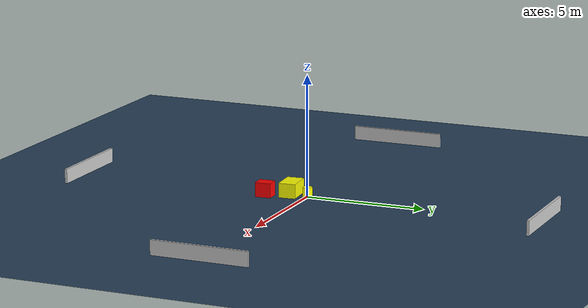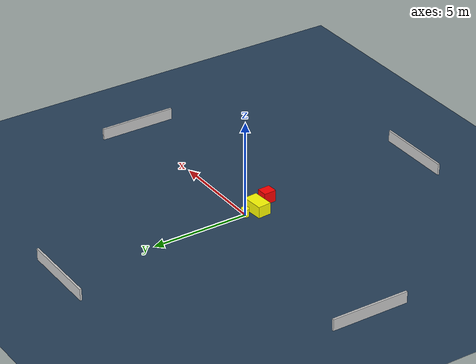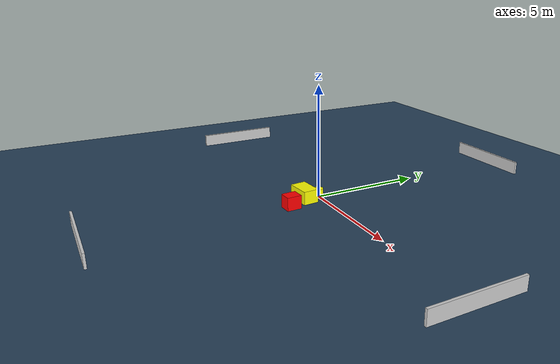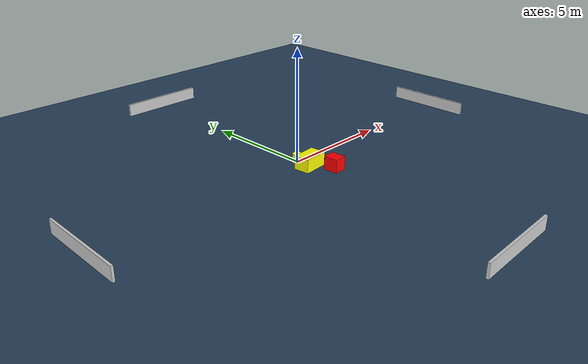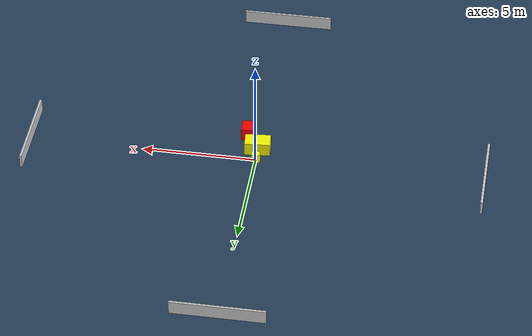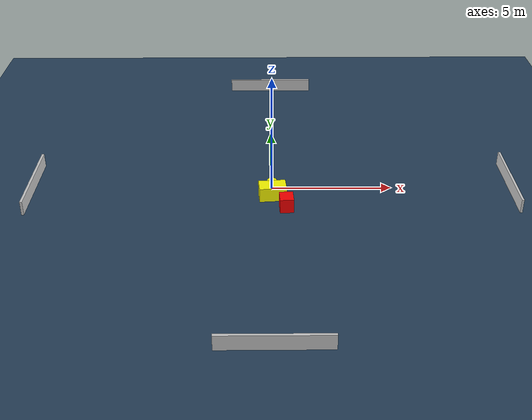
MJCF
<?xml version="1.0" ?>
<mujoco model="generated_environment">
  <option timestep="0.01" integrator="RK4" cone="elliptic"/>
  <default>
    <geom density="1"/>
  </default>
  <asset>
    <texture builtin="gradient" height="3072" name="skybox" rgb1="0.3 0.5 0.7" rgb2="0 0 0" type="skybox" width="512"/>
    <texture builtin="checker" height="300" name="groundplane" rgb1="0.2 0.3 0.4" rgb2="0.1 0.2 0.3" type="2d" width="300"/>
    <material name="groundplane" reflectance="0.2" texrepeat="5 5" texture="groundplane"/>
  </asset>
  <worldbody>
    <light dir="0 0 -1" directional="true" pos="0 0 1.5"/>
    <geom condim="3" friction="0.5 0.005 0.001" material="groundplane" name="floor" pos="0 0 0" size="0 0 0.05" type="plane"/>
    <body name="walls">
      <geom name="wall_1" condim="4" pos="-10.0 0.0 0.3" rgba="0.800000011920929 0.800000011920929 0.800000011920929 1.0" size="0.05 2.0 0.3" type="box"/>
      <geom name="wall_2" condim="4" pos="10.0 0.0 0.3" rgba="0.800000011920929 0.800000011920929 0.800000011920929 1.0" size="0.05 2.0 0.3" type="box"/>
      <geom name="wall_3" condim="4" pos="0.0 -10.0 0.3" rgba="0.800000011920929 0.800000011920929 0.800000011920929 1.0" size="2.0 0.05 0.3" type="box"/>
      <geom name="wall_4" condim="4" pos="0.0 10.0 0.3" rgba="0.800000011920929 0.800000011920929 0.800000011920929 1.0" size="2.0 0.05 0.3" type="box"/>
    </body>
    <body name="robot">
      <joint name="joint_x" type="slide" pos="0 0 0" axis="1 0 0"/>
      <joint name="joint_y" type="slide" pos="0 0 0" axis="0 1 0"/>
      <geom name="robot" type="cylinder" pos="0.0 0.0 0.2" size="0.2 0.2 0.0" mass="5.0" friction="1.0 0.005 0.0001" condim="4" rgba="1.0 1.0 0.0 1.0"/>
    </body>
    <body name="obstacle_1_movable">
      <geom name="obstacle_1_movable" condim="4" pos="0.01402651830949977 -0.7097457727409199 0.3" euler="0 0 184.56096010707074" friction="0.0 0.005 0.001" rgba="1.0 1.0 0.0 1.0" size="0.558975317110272 0.3503063619995087 0.3" type="box" mass="0.1"/>
      <joint type="free"/>
    </body>
    <body name="obstacle_2_static">
      <geom name="obstacle_2_static" condim="4" pos="0.5692530953433917 -1.616099094765103 0.3" euler="0 0 182.55278629412237" friction="0.0 0.005 0.001" rgba="1.0 0.0 0.0 1.0" size="0.2801303029639976 0.3254606099845585 0.3" type="box"/>
    </body>
  </worldbody>
  <actuator>
    <motor name="actuator_x" joint="joint_x" gear="1" ctrlrange="-1 1"/>
    <motor name="actuator_y" joint="joint_y" gear="1" ctrlrange="-1 1"/>
  </actuator>
</mujoco>
